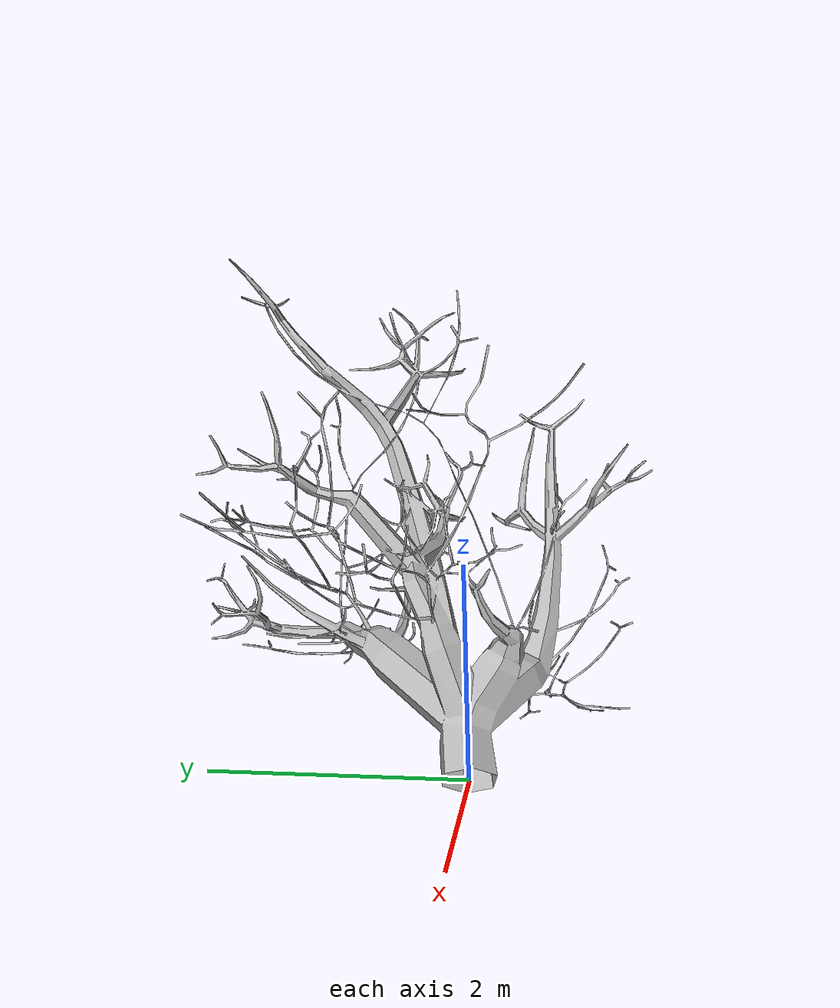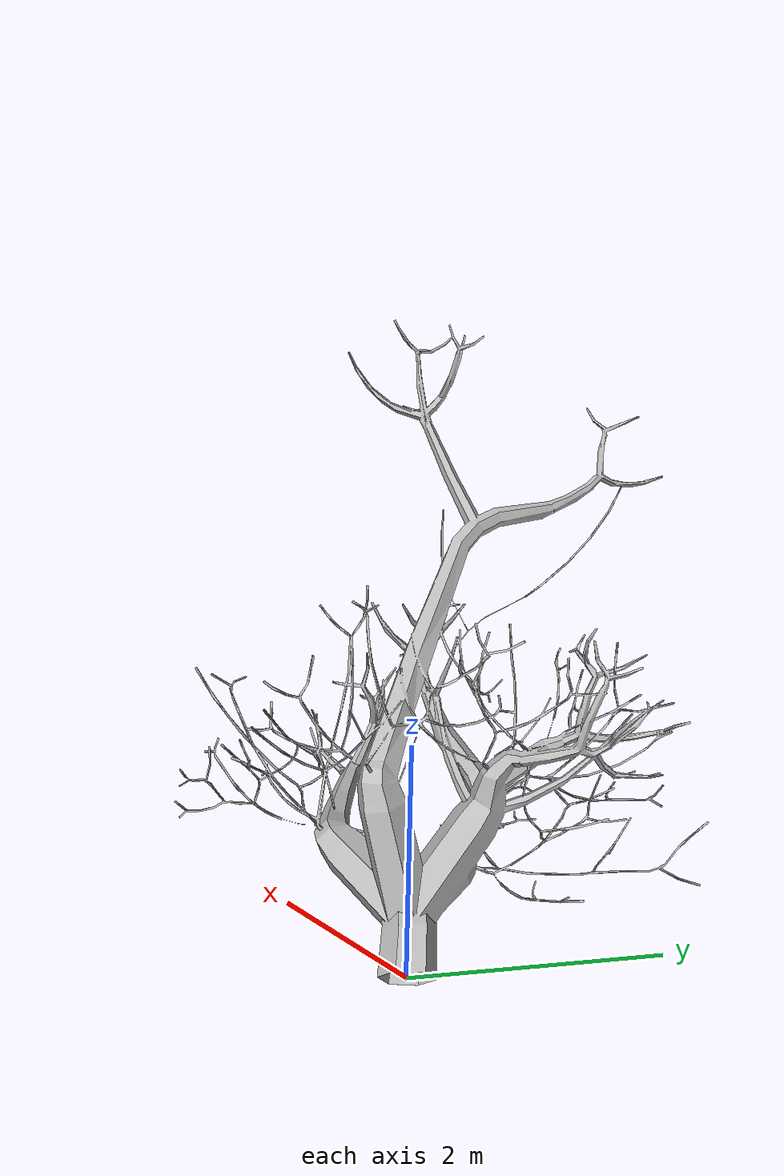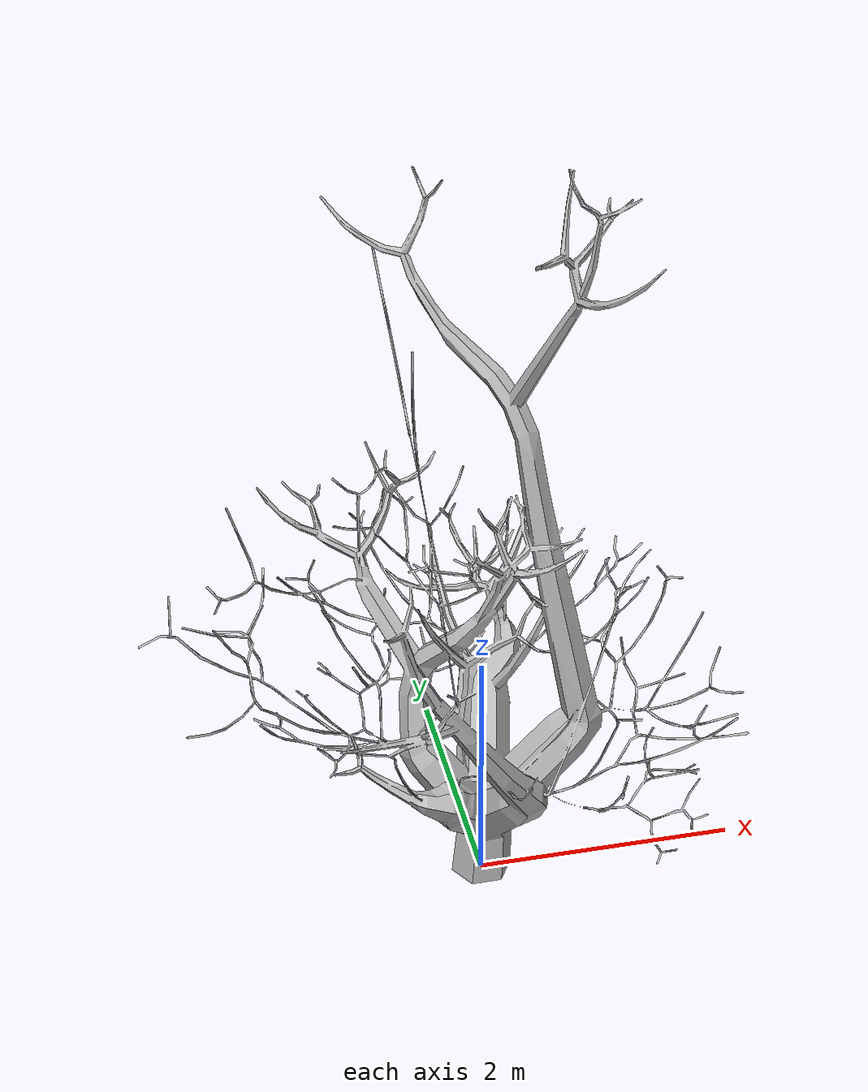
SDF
<?xml version="1.0" ?>
<sdf version="1.6">
  <model name="random_tree_2">
    <static>true</static>
    <link name="link">
      <visual name="visual">
        <geometry>
          <mesh>
            <uri>model://random_tree_2/meshes/random_tree_2.dae</uri>
          </mesh>
        </geometry>
      </visual>
      <collision name="collision">
        <geometry>
          <mesh>
            <uri>model://random_tree_2/meshes/random_tree_2.dae</uri>
          </mesh>
        </geometry>
      </collision>
    </link>
  </model>
</sdf>
